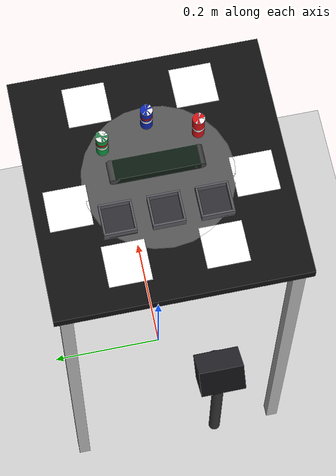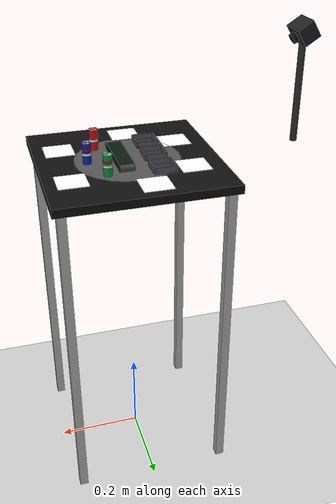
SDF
<?xml version="1.0" ?>
<sdf version="1.8">
  <world name="delta_world">

    <physics name="fast" type="dart">
      <max_step_size>0.0005</max_step_size>
      <real_time_factor>1.0</real_time_factor>
      <dart>
        <solver>
          <solver_type>pgs</solver_type>
        </solver>
        <collision_detector>ode</collision_detector>
      </dart>
    </physics>

    <plugin filename="gz-sim-physics-system"
            name="gz::sim::systems::Physics"/>
    <plugin filename="gz-sim-user-commands-system"
            name="gz::sim::systems::UserCommands"/>
    <plugin filename="gz-sim-scene-broadcaster-system"
            name="gz::sim::systems::SceneBroadcaster"/>
    <plugin filename="gz-sim-contact-system"
            name="gz::sim::systems::Contact"/>
    <plugin filename="gz-sim-sensors-system"
            name="gz::sim::systems::Sensors">
      <render_engine>ogre2</render_engine>
    </plugin>

    <light type="directional" name="sun">
      <cast_shadows>true</cast_shadows>
      <pose>0 0 10 0 0 0</pose>
      <diffuse>0.8 0.8 0.8 1</diffuse>
      <specular>0.2 0.2 0.2 1</specular>
      <attenuation>
        <range>1000</range>
        <constant>0.9</constant>
        <linear>0.01</linear>
        <quadratic>0.001</quadratic>
      </attenuation>
      <direction>0.5 0.1 -0.9</direction>
    </light>

    <model name="ground_plane">
      <static>true</static>
      <link name="link">
        <collision name="collision">
          <geometry>
            <plane>
              <normal>0 0 1</normal>
              <size>100 100</size>
            </plane>
          </geometry>
        </collision>
        <visual name="visual">
          <geometry>
            <plane>
              <normal>0 0 1</normal>
              <size>100 100</size>
            </plane>
          </geometry>
          <material>
            <ambient>0.8 0.8 0.8 1</ambient>
            <diffuse>0.8 0.8 0.8 1</diffuse>
            <specular>0.8 0.8 0.8 1</specular>
          </material>
        </visual>
      </link>
    </model>

    <!-- ===================== Bàn làm việc ===================== -->
    <model name="conveyor">
      <static>true</static>
      <link name="link">
        <collision name="belt_collision">
          <pose>0.01667 0.00000 0.78833 0 0 0</pose>
          <geometry><box><size>0.03333 0.13333 0.01667</size></box></geometry>
        </collision>
        <visual name="belt_visual">
          <pose>0.01667 0.00000 0.78833 0 0 0</pose>
          <geometry><box><size>0.03333 0.13333 0.01667</size></box></geometry>
          <material>
            <ambient>0.02 0.05 0.03 1</ambient>
            <diffuse>0.04 0.10 0.06 1</diffuse>
            <specular>0.01 0.01 0.01 1</specular>
          </material>
        </visual>
        <!-- Hai con lan: chi de nhin ra day la bang tai trong video bao ve. -->
        <visual name="roller_load">
          <pose>0.01667 0.06667 0.78833 0 1.5708 0</pose>
          <geometry><cylinder><radius>0.00833</radius><length>0.03333</length></cylinder></geometry>
          <material><ambient>0.15 0.15 0.15 1</ambient>
            <diffuse>0.25 0.25 0.25 1</diffuse></material>
        </visual>
        <visual name="roller_pick">
          <pose>0.01667 -0.06667 0.78833 0 1.5708 0</pose>
          <geometry><cylinder><radius>0.00833</radius><length>0.03333</length></cylinder></geometry>
          <material><ambient>0.15 0.15 0.15 1</ambient>
            <diffuse>0.25 0.25 0.25 1</diffuse></material>
        </visual>
      </link>
    </model>

    <model name="work_table">
      <static>true</static>
      <link name="link">
        <collision name="top_collision">
          <pose>0 0 0.77 0 0 0</pose>
          <geometry><box><size>0.40 0.40 0.02</size></box></geometry>
        </collision>
        <visual name="top_visual">
          <pose>0 0 0.77 0 0 0</pose>
          <geometry><box><size>0.40 0.40 0.02</size></box></geometry>
          <material>
            <ambient>0.03 0.03 0.03 1</ambient>
            <diffuse>0.06 0.06 0.06 1</diffuse>
            <specular>0.02 0.02 0.02 1</specular>
          </material>
        </visual>
        <visual name="leg1"><pose>0.18 0.18 0.38 0 0 0</pose>
          <geometry><box><size>0.02 0.02 0.76</size></box></geometry></visual>
        <visual name="leg2"><pose>-0.18 0.18 0.38 0 0 0</pose>
          <geometry><box><size>0.02 0.02 0.76</size></box></geometry></visual>
        <visual name="leg3"><pose>0.18 -0.18 0.38 0 0 0</pose>
          <geometry><box><size>0.02 0.02 0.76</size></box></geometry></visual>
        <visual name="leg4"><pose>-0.18 -0.18 0.38 0 0 0</pose>
          <geometry><box><size>0.02 0.02 0.76</size></box></geometry></visual>
        <visual name="reach_marker">
          <pose>0 0 0.7805 0 0 0</pose>
          <geometry><cylinder><radius>0.119</radius><length>0.001</length></cylinder></geometry>
          <transparency>0.7</transparency>
          <material>
            <ambient>1 1 1 1</ambient>
            <diffuse>1 1 1 1</diffuse>
          </material>
        </visual>
      </link>
    </model>

    <!-- ===================== Ba lon ===================== -->

    <!-- Lon Coca — ĐỎ. Tâm robot: (-0.06, 0.075, -0.1906); đỉnh: z = -0.1612 -->
    <model name="coca_can">
      <plugin filename="gz-sim-odometry-publisher-system"
              name="gz::sim::systems::OdometryPublisher">
        <dimensions>3</dimensions>
        <odom_frame>world</odom_frame>
        <robot_base_frame>coca_can</robot_base_frame>
        <odom_topic>/objects/coca_can/odometry</odom_topic>
        <tf_topic>/objects/coca_can/tf</tf_topic>
        <odom_publish_frequency>30</odom_publish_frequency>
      </plugin>
      <pose>0.06 -0.075 0.8045 0 0 0</pose>
      <link name="link">
        <inertial>
          <mass>0.05</mass>
          <inertia>
            <ixx>1.12e-5</ixx><iyy>1.12e-5</iyy><izz>2.3e-6</izz>
            <ixy>0</ixy><ixz>0</ixz><iyz>0</iyz>
          </inertia>
        </inertial>
        <collision name="collision">
          <geometry><cylinder><radius>0.00958</radius><length>0.0490</length></cylinder></geometry>
        </collision>
        <visual name="body">
          <geometry><cylinder><radius>0.00958</radius><length>0.0490</length></cylinder></geometry>
          <material>
            <ambient>0.80 0.05 0.07 1</ambient>
            <diffuse>0.85 0.06 0.08 1</diffuse>
          </material>
        </visual>
        <!-- nắp nhôm: TRẮNG NHÁM, không thuộc lớp màu nào (S ≈ 0) -->
        <visual name="lid">
          <pose>0 0 0.02365 0 0 0</pose>
          <geometry><cylinder><radius>0.00968</radius><length>0.0017</length></cylinder></geometry>
          <material>
            <ambient>0.88 0.88 0.88 1</ambient>
            <diffuse>0.94 0.94 0.94 1</diffuse>
            <specular>0 0 0 1</specular>
          </material>
        </visual>
        <!-- vành trắng: mảng chữ/nhãn trắng -->
        <visual name="label_band">
          <pose>0 0 -0.00167 0 0 0</pose>
          <geometry><cylinder><radius>0.00978</radius><length>0.00583</length></cylinder></geometry>
          <material>
            <ambient>0.90 0.90 0.90 1</ambient>
            <diffuse>0.94 0.94 0.94 1</diffuse>
          </material>
        </visual>
      </link>
    </model>

    <!-- Lon Pepsi — XANH LAM + vành ĐỎ (logo). Tâm robot: (0, 0.09, -0.1906) -->
    <model name="pepsi_can">
      <plugin filename="gz-sim-odometry-publisher-system"
              name="gz::sim::systems::OdometryPublisher">
        <dimensions>3</dimensions>
        <odom_frame>world</odom_frame>
        <robot_base_frame>pepsi_can</robot_base_frame>
        <odom_topic>/objects/pepsi_can/odometry</odom_topic>
        <tf_topic>/objects/pepsi_can/tf</tf_topic>
        <odom_publish_frequency>30</odom_publish_frequency>
      </plugin>
      <pose>0.09 0 0.8045 0 0 0</pose>
      <link name="link">
        <inertial>
          <mass>0.05</mass>
          <inertia>
            <ixx>1.12e-5</ixx><iyy>1.12e-5</iyy><izz>2.3e-6</izz>
            <ixy>0</ixy><ixz>0</ixz><iyz>0</iyz>
          </inertia>
        </inertial>
        <collision name="collision">
          <geometry><cylinder><radius>0.00958</radius><length>0.0490</length></cylinder></geometry>
        </collision>
        <visual name="body">
          <geometry><cylinder><radius>0.00958</radius><length>0.0490</length></cylinder></geometry>
          <material>
            <ambient>0.04 0.12 0.62 1</ambient>
            <diffuse>0.05 0.15 0.70 1</diffuse>
          </material>
        </visual>
        <visual name="lid">
          <pose>0 0 0.02365 0 0 0</pose>
          <geometry><cylinder><radius>0.00968</radius><length>0.0017</length></cylinder></geometry>
          <material>
            <ambient>0.88 0.88 0.88 1</ambient>
            <diffuse>0.94 0.94 0.94 1</diffuse>
            <specular>0 0 0 1</specular>
          </material>
        </visual>
        <visual name="label_band">
          <pose>0 0 -0.00167 0 0 0</pose>
          <geometry><cylinder><radius>0.00978</radius><length>0.00583</length></cylinder></geometry>
          <material>
            <ambient>0.90 0.90 0.90 1</ambient>
            <diffuse>0.94 0.94 0.94 1</diffuse>
          </material>
        </visual>
        <!-- VÀNH ĐỎ: logo đỏ trên lon không phải màu đỏ — cái bẫy của cách lọc màu toàn ảnh.
             Cao 5 mm ≈ 8.5% diện tích mặt bên, khớp tỉ lệ đo được trên lon thật. -->
        <visual name="logo_ring">
          <pose>0 0 0.00833 0 0 0</pose>
          <geometry><cylinder><radius>0.00988</radius><length>0.00417</length></cylinder></geometry>
          <material>
            <ambient>0.80 0.05 0.07 1</ambient>
            <diffuse>0.85 0.06 0.08 1</diffuse>
          </material>
        </visual>
      </link>
    </model>

    <!-- Lon 7Up — XANH LỤC + vành ĐỎ (logo). Tâm robot: (0.06, 0.075, -0.1906) -->
    <model name="sevenup_can">
      <plugin filename="gz-sim-odometry-publisher-system"
              name="gz::sim::systems::OdometryPublisher">
        <dimensions>3</dimensions>
        <odom_frame>world</odom_frame>
        <robot_base_frame>sevenup_can</robot_base_frame>
        <odom_topic>/objects/sevenup_can/odometry</odom_topic>
        <tf_topic>/objects/sevenup_can/tf</tf_topic>
        <odom_publish_frequency>30</odom_publish_frequency>
      </plugin>
      <pose>0.06 0.075 0.8045 0 0 0</pose>
      <link name="link">
        <inertial>
          <mass>0.05</mass>
          <inertia>
            <ixx>1.12e-5</ixx><iyy>1.12e-5</iyy><izz>2.3e-6</izz>
            <ixy>0</ixy><ixz>0</ixz><iyz>0</iyz>
          </inertia>
        </inertial>
        <collision name="collision">
          <geometry><cylinder><radius>0.00958</radius><length>0.0490</length></cylinder></geometry>
        </collision>
        <visual name="body">
          <geometry><cylinder><radius>0.00958</radius><length>0.0490</length></cylinder></geometry>
          <material>
            <ambient>0.04 0.52 0.20 1</ambient>
            <diffuse>0.05 0.60 0.25 1</diffuse>
          </material>
        </visual>
        <visual name="lid">
          <pose>0 0 0.02365 0 0 0</pose>
          <geometry><cylinder><radius>0.00968</radius><length>0.0017</length></cylinder></geometry>
          <material>
            <ambient>0.88 0.88 0.88 1</ambient>
            <diffuse>0.94 0.94 0.94 1</diffuse>
            <specular>0 0 0 1</specular>
          </material>
        </visual>
        <visual name="label_band">
          <pose>0 0 -0.00167 0 0 0</pose>
          <geometry><cylinder><radius>0.00978</radius><length>0.00583</length></cylinder></geometry>
          <material>
            <ambient>0.90 0.90 0.90 1</ambient>
            <diffuse>0.94 0.94 0.94 1</diffuse>
          </material>
        </visual>
        <visual name="logo_ring">
          <pose>0 0 0.00833 0 0 0</pose>
          <geometry><cylinder><radius>0.00988</radius><length>0.00417</length></cylinder></geometry>
          <material>
            <ambient>0.80 0.05 0.07 1</ambient>
            <diffuse>0.85 0.06 0.08 1</diffuse>
          </material>
        </visual>
      </link>
    </model>

    <!-- ===================== Ba khay phân loại ===================== -->

    <model name="bin_coca">
      <static>true</static>
      <pose>-0.06 -0.075 0.78 0 0 0</pose>
      <link name="link">
        <collision name="floor_collision">
          <pose>0 0 0.0015 0 0 0</pose>
          <geometry><box><size>0.051 0.051 0.003</size></box></geometry>
        </collision>
        <visual name="floor_visual">
          <pose>0 0 0.0015 0 0 0</pose>
          <geometry><box><size>0.051 0.051 0.003</size></box></geometry>
          <material><ambient>0.18 0.18 0.20 1</ambient><diffuse>0.18 0.18 0.20 1</diffuse></material>
        </visual>
        <collision name="wall_px_collision">
          <pose>0.024 0 0.0075 0 0 0</pose>
          <geometry><box><size>0.003 0.051 0.015</size></box></geometry>
        </collision>
        <visual name="wall_px_visual">
          <pose>0.024 0 0.0075 0 0 0</pose>
          <geometry><box><size>0.003 0.051 0.015</size></box></geometry>
          <material><ambient>0.35 0.35 0.38 1</ambient><diffuse>0.35 0.35 0.38 1</diffuse></material>
        </visual>
        <collision name="wall_nx_collision">
          <pose>-0.024 0 0.0075 0 0 0</pose>
          <geometry><box><size>0.003 0.051 0.015</size></box></geometry>
        </collision>
        <visual name="wall_nx_visual">
          <pose>-0.024 0 0.0075 0 0 0</pose>
          <geometry><box><size>0.003 0.051 0.015</size></box></geometry>
          <material><ambient>0.35 0.35 0.38 1</ambient><diffuse>0.35 0.35 0.38 1</diffuse></material>
        </visual>
        <collision name="wall_py_collision">
          <pose>0 0.024 0.0075 0 0 0</pose>
          <geometry><box><size>0.045 0.003 0.015</size></box></geometry>
        </collision>
        <visual name="wall_py_visual">
          <pose>0 0.024 0.0075 0 0 0</pose>
          <geometry><box><size>0.045 0.003 0.015</size></box></geometry>
          <material><ambient>0.35 0.35 0.38 1</ambient><diffuse>0.35 0.35 0.38 1</diffuse></material>
        </visual>
        <collision name="wall_ny_collision">
          <pose>0 -0.024 0.0075 0 0 0</pose>
          <geometry><box><size>0.045 0.003 0.015</size></box></geometry>
        </collision>
        <visual name="wall_ny_visual">
          <pose>0 -0.024 0.0075 0 0 0</pose>
          <geometry><box><size>0.045 0.003 0.015</size></box></geometry>
          <material><ambient>0.35 0.35 0.38 1</ambient><diffuse>0.35 0.35 0.38 1</diffuse></material>
        </visual>
      </link>
    </model>

    <model name="bin_pepsi">
      <static>true</static>
      <pose>-0.06 0 0.78 0 0 0</pose>
      <link name="link">
        <collision name="floor_collision">
          <pose>0 0 0.0015 0 0 0</pose>
          <geometry><box><size>0.051 0.051 0.003</size></box></geometry>
        </collision>
        <visual name="floor_visual">
          <pose>0 0 0.0015 0 0 0</pose>
          <geometry><box><size>0.051 0.051 0.003</size></box></geometry>
          <material><ambient>0.18 0.18 0.20 1</ambient><diffuse>0.18 0.18 0.20 1</diffuse></material>
        </visual>
        <collision name="wall_px_collision">
          <pose>0.024 0 0.0075 0 0 0</pose>
          <geometry><box><size>0.003 0.051 0.015</size></box></geometry>
        </collision>
        <visual name="wall_px_visual">
          <pose>0.024 0 0.0075 0 0 0</pose>
          <geometry><box><size>0.003 0.051 0.015</size></box></geometry>
          <material><ambient>0.35 0.35 0.38 1</ambient><diffuse>0.35 0.35 0.38 1</diffuse></material>
        </visual>
        <collision name="wall_nx_collision">
          <pose>-0.024 0 0.0075 0 0 0</pose>
          <geometry><box><size>0.003 0.051 0.015</size></box></geometry>
        </collision>
        <visual name="wall_nx_visual">
          <pose>-0.024 0 0.0075 0 0 0</pose>
          <geometry><box><size>0.003 0.051 0.015</size></box></geometry>
          <material><ambient>0.35 0.35 0.38 1</ambient><diffuse>0.35 0.35 0.38 1</diffuse></material>
        </visual>
        <collision name="wall_py_collision">
          <pose>0 0.024 0.0075 0 0 0</pose>
          <geometry><box><size>0.045 0.003 0.015</size></box></geometry>
        </collision>
        <visual name="wall_py_visual">
          <pose>0 0.024 0.0075 0 0 0</pose>
          <geometry><box><size>0.045 0.003 0.015</size></box></geometry>
          <material><ambient>0.35 0.35 0.38 1</ambient><diffuse>0.35 0.35 0.38 1</diffuse></material>
        </visual>
        <collision name="wall_ny_collision">
          <pose>0 -0.024 0.0075 0 0 0</pose>
          <geometry><box><size>0.045 0.003 0.015</size></box></geometry>
        </collision>
        <visual name="wall_ny_visual">
          <pose>0 -0.024 0.0075 0 0 0</pose>
          <geometry><box><size>0.045 0.003 0.015</size></box></geometry>
          <material><ambient>0.35 0.35 0.38 1</ambient><diffuse>0.35 0.35 0.38 1</diffuse></material>
        </visual>
      </link>
    </model>

    <model name="bin_sevenup">
      <static>true</static>
      <pose>-0.06 0.075 0.78 0 0 0</pose>
      <link name="link">
        <collision name="floor_collision">
          <pose>0 0 0.0015 0 0 0</pose>
          <geometry><box><size>0.051 0.051 0.003</size></box></geometry>
        </collision>
        <visual name="floor_visual">
          <pose>0 0 0.0015 0 0 0</pose>
          <geometry><box><size>0.051 0.051 0.003</size></box></geometry>
          <material><ambient>0.18 0.18 0.20 1</ambient><diffuse>0.18 0.18 0.20 1</diffuse></material>
        </visual>
        <collision name="wall_px_collision">
          <pose>0.024 0 0.0075 0 0 0</pose>
          <geometry><box><size>0.003 0.051 0.015</size></box></geometry>
        </collision>
        <visual name="wall_px_visual">
          <pose>0.024 0 0.0075 0 0 0</pose>
          <geometry><box><size>0.003 0.051 0.015</size></box></geometry>
          <material><ambient>0.35 0.35 0.38 1</ambient><diffuse>0.35 0.35 0.38 1</diffuse></material>
        </visual>
        <collision name="wall_nx_collision">
          <pose>-0.024 0 0.0075 0 0 0</pose>
          <geometry><box><size>0.003 0.051 0.015</size></box></geometry>
        </collision>
        <visual name="wall_nx_visual">
          <pose>-0.024 0 0.0075 0 0 0</pose>
          <geometry><box><size>0.003 0.051 0.015</size></box></geometry>
          <material><ambient>0.35 0.35 0.38 1</ambient><diffuse>0.35 0.35 0.38 1</diffuse></material>
        </visual>
        <collision name="wall_py_collision">
          <pose>0 0.024 0.0075 0 0 0</pose>
          <geometry><box><size>0.045 0.003 0.015</size></box></geometry>
        </collision>
        <visual name="wall_py_visual">
          <pose>0 0.024 0.0075 0 0 0</pose>
          <geometry><box><size>0.045 0.003 0.015</size></box></geometry>
          <material><ambient>0.35 0.35 0.38 1</ambient><diffuse>0.35 0.35 0.38 1</diffuse></material>
        </visual>
        <collision name="wall_ny_collision">
          <pose>0 -0.024 0.0075 0 0 0</pose>
          <geometry><box><size>0.045 0.003 0.015</size></box></geometry>
        </collision>
        <visual name="wall_ny_visual">
          <pose>0 -0.024 0.0075 0 0 0</pose>
          <geometry><box><size>0.045 0.003 0.015</size></box></geometry>
          <material><ambient>0.35 0.35 0.38 1</ambient><diffuse>0.35 0.35 0.38 1</diffuse></material>
        </visual>
      </link>
    </model>

    <!-- Marker ArUco hiệu chuẩn camera — GIỮ NGUYÊN vị trí như world cũ để kết quả hiệu chuẩn
         (RMS 0.14 px, lệch vị trí 0.35 mm) còn so sánh được. -->
    <model name="calib_markers">
      <static>true</static>
      <link name="link">
        <visual name="aruco_0">
          <pose>-0.13 0.075 0.7805 0 0 0</pose>
          <geometry><box><size>0.06667 0.06667 0.001</size></box></geometry>
          <material>
            <ambient>1 1 1 1</ambient><diffuse>1 1 1 1</diffuse><specular>0 0 0 1</specular>
            <pbr><metal>
              <albedo_map>model://closed_loop_description/materials/textures/aruco_0.png</albedo_map>
              <roughness>1.0</roughness><metalness>0.0</metalness>
            </metal></pbr>
          </material>
        </visual>
        <visual name="aruco_1">
          <pose>-0.13 -0.075 0.7805 0 0 0</pose>
          <geometry><box><size>0.06667 0.06667 0.001</size></box></geometry>
          <material>
            <ambient>1 1 1 1</ambient><diffuse>1 1 1 1</diffuse><specular>0 0 0 1</specular>
            <pbr><metal>
              <albedo_map>model://closed_loop_description/materials/textures/aruco_1.png</albedo_map>
              <roughness>1.0</roughness><metalness>0.0</metalness>
            </metal></pbr>
          </material>
        </visual>
        <visual name="aruco_2">
          <pose>-0.025 0.145 0.7805 0 0 0</pose>
          <geometry><box><size>0.06667 0.06667 0.001</size></box></geometry>
          <material>
            <ambient>1 1 1 1</ambient><diffuse>1 1 1 1</diffuse><specular>0 0 0 1</specular>
            <pbr><metal>
              <albedo_map>model://closed_loop_description/materials/textures/aruco_2.png</albedo_map>
              <roughness>1.0</roughness><metalness>0.0</metalness>
            </metal></pbr>
          </material>
        </visual>
        <visual name="aruco_3">
          <pose>-0.025 -0.145 0.7805 0 0 0</pose>
          <geometry><box><size>0.06667 0.06667 0.001</size></box></geometry>
          <material>
            <ambient>1 1 1 1</ambient><diffuse>1 1 1 1</diffuse><specular>0 0 0 1</specular>
            <pbr><metal>
              <albedo_map>model://closed_loop_description/materials/textures/aruco_3.png</albedo_map>
              <roughness>1.0</roughness><metalness>0.0</metalness>
            </metal></pbr>
          </material>
        </visual>
        <visual name="aruco_4">
          <pose>0.14 0.085 0.7805 0 0 0</pose>
          <geometry><box><size>0.06667 0.06667 0.001</size></box></geometry>
          <material>
            <ambient>1 1 1 1</ambient><diffuse>1 1 1 1</diffuse><specular>0 0 0 1</specular>
            <pbr><metal>
              <albedo_map>model://closed_loop_description/materials/textures/aruco_4.png</albedo_map>
              <roughness>1.0</roughness><metalness>0.0</metalness>
            </metal></pbr>
          </material>
        </visual>
        <visual name="aruco_5">
          <pose>0.14 -0.085 0.7805 0 0 0</pose>
          <geometry><box><size>0.06667 0.06667 0.001</size></box></geometry>
          <material>
            <ambient>1 1 1 1</ambient><diffuse>1 1 1 1</diffuse><specular>0 0 0 1</specular>
            <pbr><metal>
              <albedo_map>model://closed_loop_description/materials/textures/aruco_5.png</albedo_map>
              <roughness>1.0</roughness><metalness>0.0</metalness>
            </metal></pbr>
          </material>
        </visual>
      </link>
    </model>

    <!-- ===================== Camera nhìn xiên ===================== -->
    <!-- GIỮ NGUYÊN pose và nội tham số như world cũ để file hiệu chuẩn cũ còn dùng được và để so
         sánh sai số giữa hai thế giới. -->
    <model name="side_camera">
      <static>true</static>
      <pose>-0.40 0 1.03 0 0.558599 0</pose>
      <link name="link">
        <visual name="body">
          <geometry><box><size>0.04 0.06 0.04</size></box></geometry>
          <material><ambient>0.12 0.12 0.14 1</ambient><diffuse>0.12 0.12 0.14 1</diffuse></material>
        </visual>
        <visual name="lens">
          <pose>0.025 0 0 0 1.5708 0</pose>
          <geometry><cylinder><radius>0.012</radius><length>0.012</length></cylinder></geometry>
          <material><ambient>0.05 0.05 0.05 1</ambient><diffuse>0.05 0.05 0.05 1</diffuse></material>
        </visual>
        <sensor name="side_camera" type="camera">
          <always_on>true</always_on>
          <update_rate>10</update_rate>
          <visualize>true</visualize>
          <topic>side_camera/image</topic>
          <gz_frame_id>side_camera</gz_frame_id>
          <camera>
            <horizontal_fov>0.785398</horizontal_fov>
            <image>
              <width>640</width>
              <height>480</height>
              <format>R8G8B8</format>
            </image>
            <clip>
              <near>0.05</near>
              <far>3.0</far>
            </clip>
          </camera>
        </sensor>
      </link>
    </model>

    <!-- Chân đế camera (chỉ hiển thị). -->
    <model name="side_camera_stand">
      <static>true</static>
      <pose>-0.40 0 0.9 0 0 0</pose>
      <link name="link">
        <visual name="post">
          <geometry><cylinder><radius>0.008</radius><length>0.24</length></cylinder></geometry>
          <material><ambient>0.2 0.2 0.2 1</ambient><diffuse>0.2 0.2 0.2 1</diffuse></material>
        </visual>
      </link>
    </model>

  </world>
</sdf>
